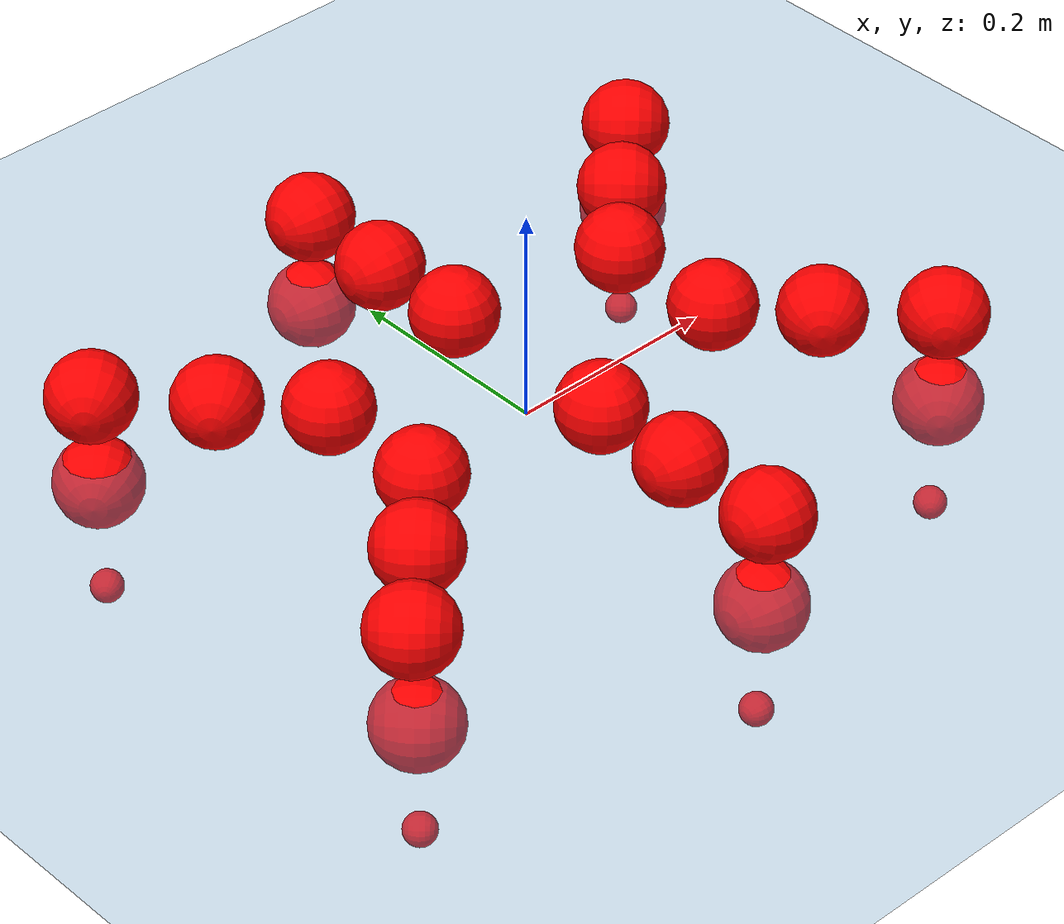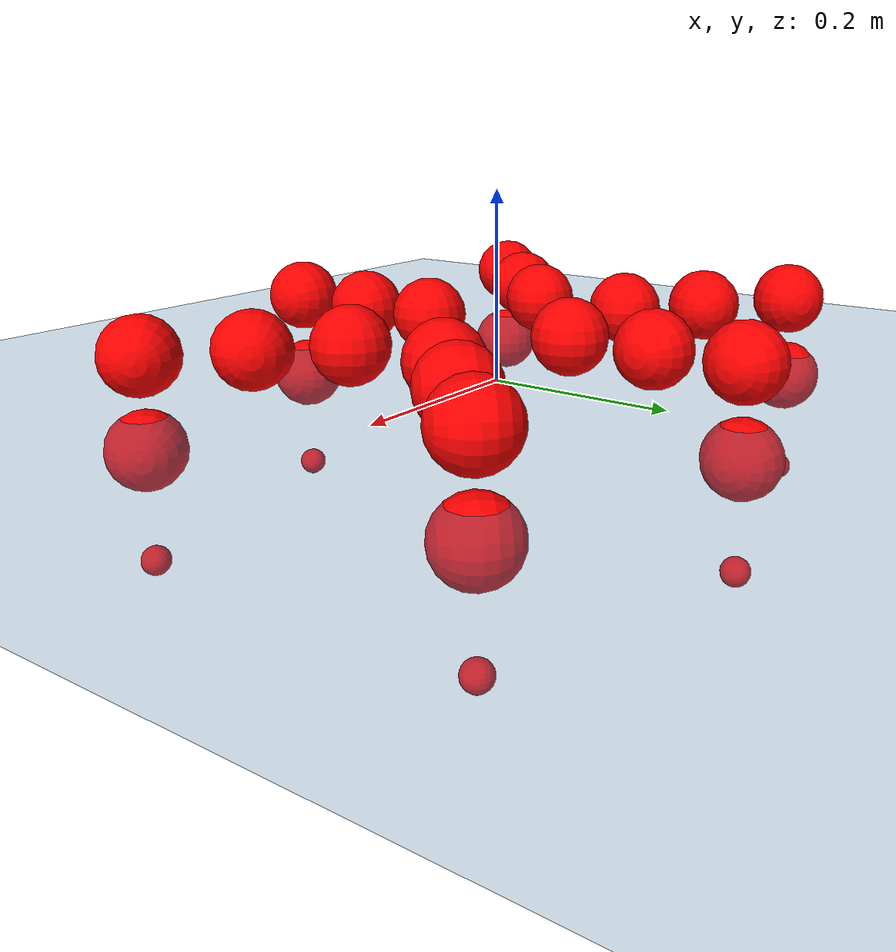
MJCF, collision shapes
<mujoco model="Golem">
  <compiler angle="radian" assetdir="assets" balanceinertia="true" inertiafromgeom="false"/>

  <option timestep="0.005" density="1.2" viscosity="2e-05"/>

  <size nkey="1"/>

  <visual>
    <quality shadowsize="8192"/>
    <map shadowclip="0.5"/>
  </visual>

  <default>
    <default class="/">
      <joint armature="0.01" damping="0.01" frictionloss="0.01"/>
      <geom contype="0" conaffinity="0" group="1" solref="-1000 -80"/>
      <site size="0.01 0.005 0.005" group="5"/>
      <general forcelimited="true" biastype="affine" gainprm="25" biasprm="0 -25 -0.5"/>
      <default class="visual">
        <geom type="mesh" group="2"/>
      </default>
      <default class="collision">
        <geom group="3"/>
      </default>
      <default class="foot">
        <geom size="0.01 0 0" condim="6" group="4" priority="1" solimp="0.015 1 0.01"/>
      </default>
      <default class="reward_collision_sphere">
        <geom group="5" rgba="1 0 0 1"/>
      </default>
    </default>
  </default>

  <asset>
    <texture type="skybox" colorspace="auto" name="//unnamed_texture_0" builtin="gradient" rgb1="0.95 0.95 0.95" rgb2="0.95 0.95 0.95" width="100" height="600"/>
    <texture type="2d" colorspace="auto" name="texplane" builtin="checker" rgb1="0.345 0.575 0.748" rgb2="0.345 0.575 0.748" markrgb="1 1 1" width="512" height="512"/>
    <material name="MatPlane" class="/" texture="texplane" texuniform="true" texrepeat="2 2" specular="0.9"/>
    <mesh name="body" class="/" file="body.stl" scale="0.001 0.001 0.001"/>
    <mesh name="coxa" class="/" file="coxa.stl" scale="0.001 0.001 0.001"/>
    <mesh name="femur" class="/" file="femur.stl" scale="0.001 0.001 0.001"/>
    <mesh name="tibia" class="/" file="tibia.stl" scale="0.001 0.001 0.001"/>
    <mesh name="tarsus" class="/" file="tarsus.stl" scale="0.001 0.001 0.001"/>
  </asset>

  <worldbody>
    <geom name="floor" class="/" size="100 100 0.125" type="plane" group="0" material="MatPlane"/>
    <light name="toplight_shadow" class="/" pos="0 0 5" dir="0.0990148 0.0990148 -0.990148" type="directional" ambient="0.04 0.04 0.04" diffuse="0.55 0.55 0.55" specular="0.12 0.12 0.12"/>
    <light name="toplight_fill" class="/" pos="0 0 5" dir="0.0990148 0.0990148 -0.990148" type="directional" castshadow="false" ambient="0.04 0.04 0.04" diffuse="0.3 0.3 0.3" specular="0.08 0.08 0.08"/>
    <body name="trunk" pos="-0.00117063 0.00143565 -0.00218741" quat="0.999999 0.000875865 -0.000348998 -0.000566569">
      <inertial pos="0.00155314 0.00194556 -0.00620306" quat="0.999917 0.00761241 -0.00948775 0.00420553" mass="3.46185" diaginertia="0.0126713 0.00677127 0.00970186"/>
      <joint name="//unnamed_joint_0" type="free"/>
      <geom name="//unnamed_geom_1" class="/" pos="0 0 0.063586" quat="1 0 0 0" type="mesh" rgba="0.9 0.9 0.9 1" mesh="body"/>
      <site name="imu" class="/" pos="0.136349 0.00524138 0.101671" size="0.0099152"/>
      <camera name="track" class="/" pos="0 -1.85403 0" quat="0.707107 0.707107 0 0" mode="trackcom"/>
      <camera name="ego_camera" class="/" pos="0.137022 0 0.0993531" quat="-0.5 -0.5 0.5 0.5"/>
      <body name="coxa_RR" pos="-0.186811 -0.0791461 0.0604507" quat="0.382583 9.03971e-05 9.50407e-05 -0.923921">
        <inertial pos="-0.000169438 -0.00234495 0.000491321" quat="0.999996 0.00179208 -0.00224895 -0.000341425" mass="0.188092" diaginertia="0.0126807 0.00641361 0.00970508"/>
        <joint name="coxa_joint_RR" class="/" pos="0 0 0" axis="-0.00798747 0.00800743 -0.999936" range="-3.18067 3.13972" armature="0.0106632" damping="0" frictionloss="0.00994807"/>
        <geom name="//unnamed_geom_2" class="/" type="mesh" rgba="0.2 0.2 0.2 1" mesh="coxa"/>
        <geom name="//unnamed_geom_3" class="reward_collision_sphere" size="0.0396608" pos="-0.0316204 0 0"/>
        <body name="femur_RR" pos="0.0632248 0.00208695 0.00137775" quat="0.500833 -0.499498 0.49961 0.500059">
          <inertial pos="0.00224163 -0.000894797 -0.00235874" quat="0.999988 -0.0020166 -0.00436205 0.000457164" mass="0.189995" diaginertia="0.0128455 0.00672841 0.00994447"/>
          <joint name="femur_joint_RR" class="/" pos="0 0 0" axis="0.000867181 0.000193157 -1" range="-3.14189 3.19161" armature="0.00989391" damping="0" frictionloss="0.0112801"/>
          <geom name="//unnamed_geom_4" class="/" type="mesh" rgba="0.9 0.9 0.9 1" mesh="femur"/>
          <geom name="//unnamed_geom_5" class="reward_collision_sphere" size="0.0396608"/>
          <body name="tibia_RR" pos="-0.00139889 -0.100669 0.00203798" quat="2.44218e-06 1 -7.77359e-07 -1.07558e-05">
            <inertial pos="0.000410647 0.000953739 -0.000595572" quat="0.999987 0.00476542 0.00141413 0.00134463" mass="0.195083" diaginertia="0.0132433 0.00698337 0.0100343"/>
            <joint name="tibia_joint_RR" class="/" pos="0 0 0" axis="0.00940251 0.00533145 0.999942" range="-3.09952 3.09464" armature="0.0104992" damping="0.0199407" frictionloss="0.00855451"/>
            <geom name="//unnamed_geom_6" class="/" type="mesh" rgba="0.2 0.2 0.2 1" mesh="tibia"/>
            <geom name="//unnamed_geom_7" class="reward_collision_sphere" size="0.0396608"/>
            <body name="tarsus_RR" pos="0.0952463 0.00139549 -0.00260927" quat="0.999999 0.000236938 0.00117386 0.000190939">
              <inertial pos="0.062081 0.00103439 -0.0019657" quat="0.5 0.499995 0.500001 0.500003" mass="0.19259" diaginertia="0.0124247 0.00684798 0.00942586"/>
              <joint name="tarsus_joint_RR" class="/" pos="0 0 0" axis="0.00264031 0.000770103 0.999996" range="-3.17968 3.11253" armature="0.00859997" damping="0.0055669" frictionloss="0.0105008"/>
              <geom name="//unnamed_geom_8" class="/" type="mesh" rgba="0.9 0.9 0.9 1" mesh="tarsus"/>
              <geom name="foot_1" class="foot" size="0.0108922" pos="0.11805 0 0" quat="0 -0.707107 0 0.707107"/>
              <geom name="//unnamed_geom_10" class="reward_collision_sphere" size="0.0396608"/>
              <geom name="//unnamed_geom_11" class="reward_collision_sphere" size="0.0148728" pos="0.113307 0 0"/>
              <site name="foot_1" class="foot" pos="0.11805 0 0" quat="0 -0.707107 0 0.707107" size="0.0099152"/>
            </body>
          </body>
        </body>
      </body>
      <body name="coxa_RM" pos="-0.000504655 -0.125046 0.0628595" quat="0.707161 0.000246542 0.0010434 -0.707051">
        <inertial pos="0.00192173 -0.00093412 -0.000441566" quat="0.999999 -0.000686049 -0.000508164 0.000709942" mass="0.188133" diaginertia="0.0129051 0.00688559 0.00967811"/>
        <joint name="coxa_joint_RM" class="/" pos="0 0 0" axis="-0.00032105 0.00552362 -0.999985" range="-3.14508 3.14755" armature="0.0107541" damping="0.000456894" frictionloss="0.0112666"/>
        <geom name="//unnamed_geom_12" class="/" type="mesh" rgba="0.2 0.2 0.2 1" mesh="coxa"/>
        <geom name="//unnamed_geom_13" class="reward_collision_sphere" size="0.0396608" pos="-0.0316204 0 0"/>
        <body name="femur_RM" pos="0.0613341 -0.000574822 -0.000559552" quat="0.500233 -0.499648 0.500089 0.50003">
          <inertial pos="-0.000864874 -0.0024928 -0.000776659" quat="0.999911 -0.000193875 0.0117676 -0.00628695" mass="0.196149" diaginertia="0.0130405 0.00688206 0.00980224"/>
          <joint name="femur_joint_RM" class="/" pos="0 0 0" axis="-0.00188308 0.007725 -0.999968" stiffness="0.00754598" range="-3.14001 3.1447" armature="0.0110502" damping="0.0194446" frictionloss="0.00864595"/>
          <geom name="//unnamed_geom_14" class="/" type="mesh" rgba="0.9 0.9 0.9 1" mesh="femur"/>
          <geom name="//unnamed_geom_15" class="reward_collision_sphere" size="0.0396608"/>
          <body name="tibia_RM" pos="-0.00195235 -0.0990226 0.000230649" quat="-0.000164753 0.999999 0.000551761 -0.00101537">
            <inertial pos="-0.00225218 -0.0018636 -0.000139423" quat="0.999931 0.00834057 -0.00622574 -0.00550828" mass="0.192925" diaginertia="0.012646 0.0065976 0.00946247"/>
            <joint name="tibia_joint_RM" class="/" pos="0 0 0" axis="-0.00237591 0.00368141 0.99999" range="-3.15662 3.1828" armature="0.00864686" damping="1.23795e-05" frictionloss="0.0101563"/>
            <geom name="//unnamed_geom_16" class="/" type="mesh" rgba="0.2 0.2 0.2 1" mesh="tibia"/>
            <geom name="//unnamed_geom_17" class="reward_collision_sphere" size="0.0396608"/>
            <body name="tarsus_RM" pos="0.0944451 -0.0014832 -0.000126425" quat="1 -0.000332824 -0.000200506 0.000168375">
              <inertial pos="0.063657 0.000517979 0.00282736" quat="0.499806 0.497709 0.503437 0.49903" mass="0.190114" diaginertia="0.0129882 0.00671481 0.00945675"/>
              <joint name="tarsus_joint_RM" class="/" pos="0 0 0" axis="0.0089617 0.00746702 0.999932" range="-3.16616 3.12181" armature="0.010137" damping="0.00604988" frictionloss="0.00926033"/>
              <geom name="//unnamed_geom_18" class="/" type="mesh" rgba="0.9 0.9 0.9 1" mesh="tarsus"/>
              <geom name="foot_2" class="foot" size="0.0107432" pos="0.11805 0 0" quat="0 -0.707107 0 0.707107"/>
              <geom name="//unnamed_geom_20" class="reward_collision_sphere" size="0.0396608"/>
              <geom name="//unnamed_geom_21" class="reward_collision_sphere" size="0.0148728" pos="0.113307 0 0"/>
              <site name="foot_2" class="foot" pos="0.11805 0 0" quat="0 -0.707107 0 0.707107" size="0.0099152"/>
            </body>
          </body>
        </body>
      </body>
      <body name="coxa_RF" pos="0.188056 -0.0785459 0.0638341" quat="0.923764 0.000984563 -0.00113223 -0.382959">
        <inertial pos="-0.00186931 0.000388641 0.00134647" quat="0.999999 -0.000265077 0.000427334 0.00125627" mass="0.188266" diaginertia="0.0122871 0.00671888 0.00949879"/>
        <joint name="coxa_joint_RF" class="/" pos="0 0 0" axis="-0.00109501 -0.00202831 -0.999997" range="-3.1534 3.1906" armature="0.00954643" damping="0" frictionloss="0.0103943"/>
        <geom name="//unnamed_geom_22" class="/" type="mesh" rgba="0.2 0.2 0.2 1" mesh="coxa"/>
        <geom name="//unnamed_geom_23" class="reward_collision_sphere" size="0.0396608" pos="-0.0316204 0 0"/>
        <body name="femur_RF" pos="0.0607174 -0.00273898 -0.00159369" quat="0.500016 -0.500126 0.499865 0.499993">
          <inertial pos="-0.0015914 -0.000420978 -0.000712057" quat="0.999925 0.00230541 0.00123987 -0.0119991" mass="0.192581" diaginertia="0.0123847 0.00667862 0.00923443"/>
          <joint name="femur_joint_RF" class="/" pos="0 0 0" axis="-0.000631188 0.00160227 -0.999999" stiffness="0.00655202" range="-3.13594 3.08486" armature="0.0102736" damping="0" frictionloss="0.00857652"/>
          <geom name="//unnamed_geom_24" class="/" type="mesh" rgba="0.9 0.9 0.9 1" mesh="femur"/>
          <geom name="//unnamed_geom_25" class="reward_collision_sphere" size="0.0396608"/>
          <body name="tibia_RF" pos="0.00100653 -0.103053 0.00244711" quat="-0.000138354 1 0.000326475 -0.000211378">
            <inertial pos="0.000228346 8.53367e-05 0.00146896" quat="0.999998 -0.0021301 -0.000127657 0.000217981" mass="0.18894" diaginertia="0.0122549 0.00664136 0.00950903"/>
            <joint name="tibia_joint_RF" class="/" pos="0 0 0" axis="-0.00429824 -0.0105314 0.999935" range="-3.1216 3.18923" armature="0.00956391" damping="0.00414945" frictionloss="0.0111493"/>
            <geom name="//unnamed_geom_26" class="/" type="mesh" rgba="0.2 0.2 0.2 1" mesh="tibia"/>
            <geom name="//unnamed_geom_27" class="reward_collision_sphere" size="0.0396608"/>
            <body name="tarsus_RF" pos="0.0926462 0.000855163 0.000943985" quat="1 -0.000586762 -0.000281382 -0.000234552">
              <inertial pos="0.0608932 0.00181717 0.00231372" quat="0.499981 0.498951 0.497301 0.503744" mass="0.201462" diaginertia="0.012969 0.00704473 0.0101123"/>
              <joint name="tarsus_joint_RF" class="/" pos="0 0 0" axis="-0.0118962 -0.0020941 0.999927" stiffness="0.0278568" range="-3.11675 3.1368" armature="0.0108011" damping="0.0139156" frictionloss="0.0106547"/>
              <geom name="//unnamed_geom_28" class="/" type="mesh" rgba="0.9 0.9 0.9 1" mesh="tarsus"/>
              <geom name="foot_3" class="foot" size="0.0100977" pos="0.11805 0 0" quat="0 -0.707107 0 0.707107"/>
              <geom name="//unnamed_geom_30" class="reward_collision_sphere" size="0.0396608"/>
              <geom name="//unnamed_geom_31" class="reward_collision_sphere" size="0.0148728" pos="0.113307 0 0"/>
              <site name="foot_3" class="foot" pos="0.11805 0 0" quat="0 -0.707107 0 0.707107" size="0.0099152"/>
            </body>
          </body>
        </body>
      </body>
      <body name="coxa_LR" pos="-0.186012 0.0811176 0.0607743" quat="0.38192 -0.000261778 0.000162664 0.924195">
        <inertial pos="-0.00160064 -0.00134856 0.00102345" quat="0.999976 0.00579432 -0.00235104 0.00313107" mass="0.194125" diaginertia="0.0124654 0.00657102 0.00967556"/>
        <joint name="coxa_joint_LR" class="/" pos="0 0 0" axis="0.00727507 0.00183546 -0.999972" stiffness="0.0119466" range="-3.18861 3.19388" armature="0.01125" damping="0" frictionloss="0.00962646"/>
        <geom name="//unnamed_geom_32" class="/" type="mesh" rgba="0.2 0.2 0.2 1" mesh="coxa"/>
        <geom name="//unnamed_geom_33" class="reward_collision_sphere" size="0.0396608" pos="-0.0316204 0 0"/>
        <body name="femur_LR" pos="0.0611026 -0.00257229 0.000947541" quat="0.501291 -0.499555 0.499426 0.499725">
          <inertial pos="0.000278427 0.00209579 0.000875351" quat="0.999999 -0.000738761 -0.00117813 0.000273069" mass="0.196407" diaginertia="0.0130918 0.00697495 0.00980007"/>
          <joint name="femur_joint_LR" class="/" pos="0 0 0" axis="-0.000691787 -0.0025303 0.999997" range="-3.13907 3.13218" armature="0.0097051" damping="0.0257865" frictionloss="0.00999477"/>
          <geom name="//unnamed_geom_34" class="/" type="mesh" rgba="0.9 0.9 0.9 1" mesh="femur"/>
          <geom name="//unnamed_geom_35" class="reward_collision_sphere" size="0.0396608"/>
          <body name="tibia_LR" pos="-0.00377091 -0.103062 0.00143984" quat="-0.000729097 0.999999 -0.000293678 0.00101117">
            <inertial pos="0.00254946 -0.00123852 -0.00197685" quat="0.999998 -0.0015303 -4.24406e-05 -0.00142808" mass="0.201613" diaginertia="0.0131571 0.00680547 0.0099158"/>
            <joint name="tibia_joint_LR" class="/" pos="0 0 0" axis="-0.00503802 -0.0150697 -0.999874" stiffness="0.000362559" range="-3.0894 3.13659" armature="0.0112406" damping="0" frictionloss="0.00977322"/>
            <geom name="//unnamed_geom_36" class="/" type="mesh" rgba="0.2 0.2 0.2 1" mesh="tibia"/>
            <geom name="//unnamed_geom_37" class="reward_collision_sphere" size="0.0396608"/>
            <body name="tarsus_LR" pos="0.090806 -0.000526988 0.00185529" quat="1 0.000512697 -0.00020366 -0.000613252">
              <inertial pos="0.0594432 0.00101526 5.86922e-05" quat="0.500385 0.498044 0.510347 0.491033" mass="0.191394" diaginertia="0.0133641 0.00657662 0.00959875"/>
              <joint name="tarsus_joint_LR" class="/" pos="0 0 0" axis="0.000151743 -0.000745484 -1" range="-3.19573 3.09081" armature="0.00905553" damping="0.00802623" frictionloss="0.00874528"/>
              <geom name="//unnamed_geom_38" class="/" type="mesh" rgba="0.9 0.9 0.9 1" mesh="tarsus"/>
              <geom name="foot_4" class="foot" size="0.00924472" pos="0.11805 0 0" quat="0.707107 0 -0.707107 0"/>
              <geom name="//unnamed_geom_40" class="reward_collision_sphere" size="0.0396608"/>
              <geom name="//unnamed_geom_41" class="reward_collision_sphere" size="0.0148728" pos="0.113307 0 0"/>
              <site name="foot_4" class="foot" pos="0.11805 0 0" quat="0.707107 0 -0.707107 0" size="0.0099152"/>
            </body>
          </body>
        </body>
      </body>
      <body name="coxa_LM" pos="0.00107956 0.119794 0.0609687" quat="0.707074 6.79571e-06 1.6001e-05 0.70714">
        <inertial pos="-0.00222441 -0.00169168 0.00298462" quat="0.999999 0.0017024 9.94125e-05 0.000258979" mass="0.189348" diaginertia="0.0132045 0.00671255 0.00955739"/>
        <joint name="coxa_joint_LM" class="/" pos="0 0 0" axis="0.00172225 0.00856808 -0.999962" range="-3.15989 3.17954" armature="0.0111248" damping="0.00448101" frictionloss="0.0110547"/>
        <geom name="//unnamed_geom_42" class="/" type="mesh" rgba="0.2 0.2 0.2 1" mesh="coxa"/>
        <geom name="//unnamed_geom_43" class="reward_collision_sphere" size="0.0396608" pos="-0.0316204 0 0"/>
        <body name="femur_LM" pos="0.0620316 0.00180003 -0.000949758" quat="0.499999 -0.50009 0.499913 0.499998">
          <inertial pos="0.00174482 -0.00134501 -0.00236216" quat="0.999975 -0.00515741 0.00267967 0.00407482" mass="0.205092" diaginertia="0.0132435 0.00687946 0.00953112"/>
          <joint name="femur_joint_LM" class="/" pos="0 0 0" axis="5.23161e-06 4.6622e-05 1" stiffness="0.00484862" range="-3.09102 3.13761" armature="0.00936155" damping="0.0162631" frictionloss="0.00899025"/>
          <geom name="//unnamed_geom_44" class="/" type="mesh" rgba="0.9 0.9 0.9 1" mesh="femur"/>
          <geom name="//unnamed_geom_45" class="reward_collision_sphere" size="0.0396608"/>
          <body name="tibia_LM" pos="-0.00104062 -0.0948894 -0.00239638" quat="-0.000398233 1 -2.27715e-05 -8.31489e-05">
            <inertial pos="0.00227268 -0.001171 -0.000525175" quat="1 -0.000120981 3.47382e-05 0.000126134" mass="0.193757" diaginertia="0.0129637 0.00664341 0.00927128"/>
            <joint name="tibia_joint_LM" class="/" pos="0 0 0" axis="-0.0135503 -0.00159234 -0.999907" stiffness="0.00725981" range="-3.13469 3.14209" armature="0.0100417" damping="0.00994069" frictionloss="0.00940331"/>
            <geom name="//unnamed_geom_46" class="/" type="mesh" rgba="0.2 0.2 0.2 1" mesh="tibia"/>
            <geom name="//unnamed_geom_47" class="reward_collision_sphere" size="0.0396608"/>
            <body name="tarsus_LM" pos="0.0927957 0.000769716 -0.0014293" quat="1 2.83647e-05 -0.000119041 -0.000134625">
              <inertial pos="0.0641239 -0.000359857 0.0025961" quat="0.500141 0.500132 0.499813 0.499914" mass="0.195194" diaginertia="0.0126947 0.00659175 0.00964208"/>
              <joint name="tarsus_joint_LM" class="/" pos="0 0 0" axis="0.00729798 -0.001264 -0.999973" range="-3.13695 3.14151" armature="0.0100013" damping="0.00845851" frictionloss="0.00996089"/>
              <geom name="//unnamed_geom_48" class="/" type="mesh" rgba="0.9 0.9 0.9 1" mesh="tarsus"/>
              <geom name="foot_5" class="foot" size="0.0100633" pos="0.11805 0 0" quat="0.707107 0 -0.707107 0"/>
              <geom name="//unnamed_geom_50" class="reward_collision_sphere" size="0.0396608"/>
              <geom name="//unnamed_geom_51" class="reward_collision_sphere" size="0.0148728" pos="0.113307 0 0"/>
              <site name="foot_5" class="foot" pos="0.11805 0 0" quat="0.707107 0 -0.707107 0" size="0.0099152"/>
            </body>
          </body>
        </body>
      </body>
      <body name="coxa_LF" pos="0.18709 0.0791542 0.0640692" quat="0.924107 0.000116981 -0.000632208 0.382132">
        <inertial pos="-0.000452687 0.000579583 0.000558366" quat="0.999972 0.00439886 0.00609468 -0.000127483" mass="0.191433" diaginertia="0.0131423 0.00689733 0.00952396"/>
        <joint name="coxa_joint_LF" class="/" pos="0 0 0" axis="-0.00506735 0.00236822 -0.999984" stiffness="0.0011274" range="-3.1635 3.13016" armature="0.00935201" damping="0.00296563" frictionloss="0.00896492"/>
        <geom name="//unnamed_geom_52" class="/" type="mesh" rgba="0.2 0.2 0.2 1" mesh="coxa"/>
        <geom name="//unnamed_geom_53" class="reward_collision_sphere" size="0.0396608" pos="-0.0316204 0 0"/>
        <body name="femur_LF" pos="0.0620559 0.000331494 0.000179879" quat="0.49985 -0.499597 0.500198 0.500355">
          <inertial pos="0.00161313 0.0010984 -0.00202711" quat="0.999999 0.000172177 0.000801956 -0.000888323" mass="0.186545" diaginertia="0.012859 0.00682626 0.00955902"/>
          <joint name="femur_joint_LF" class="/" pos="0 0 0" axis="0.00013853 0.000270551 1" stiffness="0.00562075" range="-3.15642 3.15032" armature="0.0110743" damping="0.0186731" frictionloss="0.01096"/>
          <geom name="//unnamed_geom_54" class="/" type="mesh" rgba="0.9 0.9 0.9 1" mesh="femur"/>
          <geom name="//unnamed_geom_55" class="reward_collision_sphere" size="0.0396608"/>
          <body name="tibia_LF" pos="0.00119547 -0.102431 -0.00142897" quat="0.000384024 0.999999 -0.000896632 -0.000615571">
            <inertial pos="-0.00261217 0.00168218 -6.48569e-05" quat="0.999999 -0.000406831 0.0010846 -0.000558944" mass="0.207054" diaginertia="0.0135462 0.00701987 0.0102672"/>
            <joint name="tibia_joint_LF" class="/" pos="0 0 0" axis="-0.00036307 0.00178307 -0.999998" range="-3.12202 3.15035" armature="0.0109283" damping="0" frictionloss="0.00943235"/>
            <geom name="//unnamed_geom_56" class="/" type="mesh" rgba="0.2 0.2 0.2 1" mesh="tibia"/>
            <geom name="//unnamed_geom_57" class="reward_collision_sphere" size="0.0396608"/>
            <body name="tarsus_LF" pos="0.0923658 -0.000967653 -0.00118746" quat="1 0.000588891 -0.000217313 -0.000120973">
              <inertial pos="0.0650199 0.00277262 -0.0012816" quat="0.50784 0.495824 0.501894 0.494327" mass="0.195562" diaginertia="0.0137261 0.00689145 0.0102162"/>
              <joint name="tarsus_joint_LF" class="/" pos="0 0 0" axis="-0.00584647 -0.0140806 -0.999884" range="-3.10488 3.12851" armature="0.0105729" damping="0.015355" frictionloss="0.0105502"/>
              <geom name="//unnamed_geom_58" class="/" type="mesh" rgba="0.9 0.9 0.9 1" mesh="tarsus"/>
              <geom name="foot_6" class="foot" size="0.01092" pos="0.11805 0 0" quat="0.707107 0 -0.707107 0"/>
              <geom name="//unnamed_geom_60" class="reward_collision_sphere" size="0.0396608"/>
              <geom name="//unnamed_geom_61" class="reward_collision_sphere" size="0.0148728" pos="0.113307 0 0"/>
              <site name="foot_6" class="foot" pos="0.11805 0 0" quat="0.707107 0 -0.707107 0" size="0.0099152"/>
            </body>
          </body>
        </body>
      </body>
    </body>
  </worldbody>

  <contact>
    <pair class="/" geom1="floor" geom2="foot_1" name="//unnamed_contact_0"/>
    <pair class="/" geom1="floor" geom2="foot_2" name="//unnamed_contact_1"/>
    <pair class="/" geom1="floor" geom2="foot_3" name="//unnamed_contact_2"/>
    <pair class="/" geom1="floor" geom2="foot_4" name="//unnamed_contact_3"/>
    <pair class="/" geom1="floor" geom2="foot_5" name="//unnamed_contact_4"/>
    <pair class="/" geom1="floor" geom2="foot_6" name="//unnamed_contact_5"/>
  </contact>

  <actuator>
    <general name="coxa_joint_RR" class="/" joint="coxa_joint_RR" forcerange="-6.50679 6.50679" gainprm="24.5256" biasprm="0 -24.5256 -0.468978"/>
    <general name="femur_joint_RR" class="/" joint="femur_joint_RR" forcerange="-7.2136 7.2136" gainprm="24.5256" biasprm="0 -24.5256 -0.468978"/>
    <general name="tibia_joint_RR" class="/" joint="tibia_joint_RR" forcerange="-6.57374 6.57374" gainprm="24.5256" biasprm="0 -24.5256 -0.468978"/>
    <general name="tarsus_joint_RR" class="/" joint="tarsus_joint_RR" forcerange="-7.31846 7.31846" gainprm="24.5256" biasprm="0 -24.5256 -0.468978"/>
    <general name="coxa_joint_RM" class="/" joint="coxa_joint_RM" forcerange="-7.29973 7.29973" gainprm="24.5256" biasprm="0 -24.5256 -0.468978"/>
    <general name="femur_joint_RM" class="/" joint="femur_joint_RM" forcerange="-7.2361 7.2361" gainprm="24.5256" biasprm="0 -24.5256 -0.468978"/>
    <general name="tibia_joint_RM" class="/" joint="tibia_joint_RM" forcerange="-7.125 7.125" gainprm="24.5256" biasprm="0 -24.5256 -0.468978"/>
    <general name="tarsus_joint_RM" class="/" joint="tarsus_joint_RM" forcerange="-6.98393 6.98393" gainprm="24.5256" biasprm="0 -24.5256 -0.468978"/>
    <general name="coxa_joint_RF" class="/" joint="coxa_joint_RF" forcerange="-7.93427 7.93427" gainprm="24.5256" biasprm="0 -24.5256 -0.468978"/>
    <general name="femur_joint_RF" class="/" joint="femur_joint_RF" forcerange="-7.37447 7.37447" gainprm="24.5256" biasprm="0 -24.5256 -0.468978"/>
    <general name="tibia_joint_RF" class="/" joint="tibia_joint_RF" forcerange="-7.81514 7.81514" gainprm="24.5256" biasprm="0 -24.5256 -0.468978"/>
    <general name="tarsus_joint_RF" class="/" joint="tarsus_joint_RF" forcerange="-6.73499 6.73499" gainprm="24.5256" biasprm="0 -24.5256 -0.468978"/>
    <general name="coxa_joint_LR" class="/" joint="coxa_joint_LR" forcerange="-6.59718 6.59718" gainprm="24.5256" biasprm="0 -24.5256 -0.468978"/>
    <general name="femur_joint_LR" class="/" joint="femur_joint_LR" forcerange="-6.99594 6.99594" gainprm="24.5256" biasprm="0 -24.5256 -0.468978"/>
    <general name="tibia_joint_LR" class="/" joint="tibia_joint_LR" forcerange="-7.22059 7.22059" gainprm="24.5256" biasprm="0 -24.5256 -0.468978"/>
    <general name="tarsus_joint_LR" class="/" joint="tarsus_joint_LR" forcerange="-6.60492 6.60492" gainprm="24.5256" biasprm="0 -24.5256 -0.468978"/>
    <general name="coxa_joint_LM" class="/" joint="coxa_joint_LM" forcerange="-6.86169 6.86169" gainprm="24.5256" biasprm="0 -24.5256 -0.468978"/>
    <general name="femur_joint_LM" class="/" joint="femur_joint_LM" forcerange="-6.65925 6.65925" gainprm="24.5256" biasprm="0 -24.5256 -0.468978"/>
    <general name="tibia_joint_LM" class="/" joint="tibia_joint_LM" forcerange="-6.4936 6.4936" gainprm="24.5256" biasprm="0 -24.5256 -0.468978"/>
    <general name="tarsus_joint_LM" class="/" joint="tarsus_joint_LM" forcerange="-6.77353 6.77353" gainprm="24.5256" biasprm="0 -24.5256 -0.468978"/>
    <general name="coxa_joint_LF" class="/" joint="coxa_joint_LF" forcerange="-7.12702 7.12702" gainprm="24.5256" biasprm="0 -24.5256 -0.468978"/>
    <general name="femur_joint_LF" class="/" joint="femur_joint_LF" forcerange="-6.59861 6.59861" gainprm="24.5256" biasprm="0 -24.5256 -0.468978"/>
    <general name="tibia_joint_LF" class="/" joint="tibia_joint_LF" forcerange="-7.88379 7.88379" gainprm="24.5256" biasprm="0 -24.5256 -0.468978"/>
    <general name="tarsus_joint_LF" class="/" joint="tarsus_joint_LF" forcerange="-6.5036 6.5036" gainprm="24.5256" biasprm="0 -24.5256 -0.468978"/>
  </actuator>

  <sensor>
    <gyro site="imu" name="imu_angular_velocity"/>
    <velocimeter site="imu" name="imu_linear_velocity"/>
    <framelinvel objtype="site" objname="foot_1" name="foot_1_global_linear_velocity"/>
    <framelinvel objtype="site" objname="foot_2" name="foot_2_global_linear_velocity"/>
    <framelinvel objtype="site" objname="foot_3" name="foot_3_global_linear_velocity"/>
    <framelinvel objtype="site" objname="foot_4" name="foot_4_global_linear_velocity"/>
    <framelinvel objtype="site" objname="foot_5" name="foot_5_global_linear_velocity"/>
    <framelinvel objtype="site" objname="foot_6" name="foot_6_global_linear_velocity"/>
  </sensor>

  <keyframe>
    <key name="home" qpos="0 0 0.1457 1 0 0 0 0 0 0 0 0 0 0 0 0 0 0 0 0 0 0 0 0 0 0 0 0 0 0 0"/>
  </keyframe>
</mujoco>
